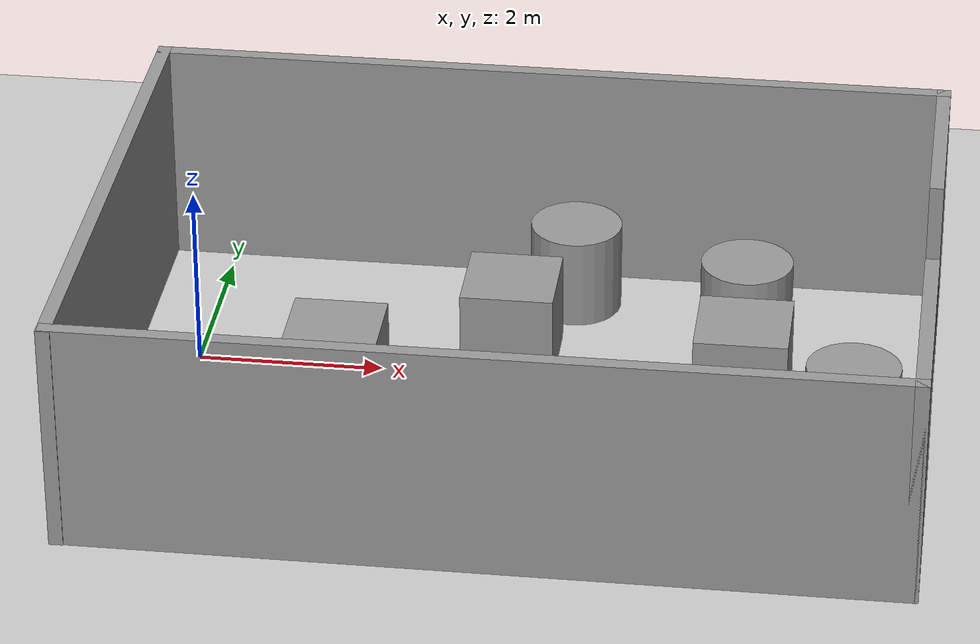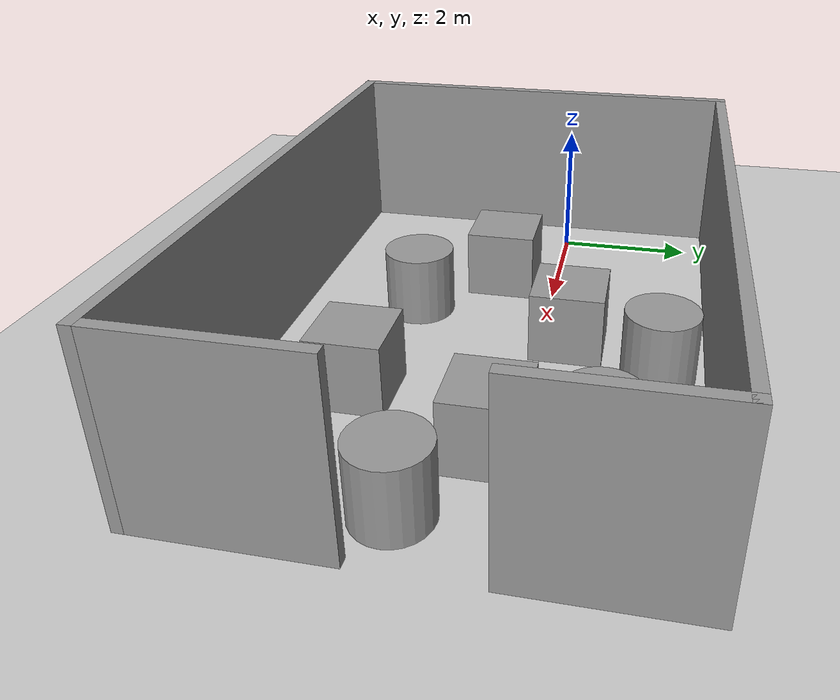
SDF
<sdf version="1.7">
 <world name="default">
  <physics type="ode">
   <max_step_size>0.001</max_step_size>
   <real_time_update_rate>1000</real_time_update_rate>
   <real_time_factor>1</real_time_factor>
   <type>world</type>
   <iters>500</iters>
  </physics>
  <light name="sun" type="directional">
   <pose>0 0 10 0 -0 0</pose>
   <diffuse>0.8 0.8 0.8 1</diffuse>
   <specular>0.2 0.2 0.2 1</specular>
   <attenuation>
    <range>1000</range>
    <constant>0.9</constant>
    <linear>0.01</linear>
    <quadratic>0.001</quadratic>
   </attenuation>
   <direction>-0.5 0.1 -0.9</direction>
   <spot><inner_angle>0</inner_angle><outer_angle>0</outer_angle><falloff>0</falloff></spot>
  </light>
  <model name="ground_plane">
   <static>1</static>
   <link name="link">
    <collision name="collision">
     <geometry><plane><normal>0 0 1</normal><size>100 100</size></plane></geometry>
     <surface><friction><ode><mu>100</mu><mu2>50</mu2></ode></friction></surface>
    </collision>
    <visual name="visual">
     <cast_shadows>0</cast_shadows>
     <geometry><plane><normal>0 0 1</normal><size>100 100</size></plane></geometry>
     <material>
      <script><uri>file://media/materials/scripts/gazebo.material</uri><name>Gazebo/Grey</name></script>
     </material>
    </visual>
   </link>
  </model>
  <gravity>0 0 -9.8</gravity>
  <magnetic_field>6e-06 2.3e-05 -4.2e-05</magnetic_field>
  <atmosphere type="adiabatic"/>
  <scene><ambient>0.4 0.4 0.4 1</ambient><background>0.7 0.7 0.7 1</background><shadows>1</shadows></scene>
  <spherical_coordinates>
   <surface_model>EARTH_WGS84</surface_model>
   <latitude_deg>0</latitude_deg>
   <longitude_deg>0</longitude_deg>
   <elevation>0</elevation>
   <heading_deg>0</heading_deg>
  </spherical_coordinates>
  <model name="unit_box">
   <pose>5.01399 -2.12701 0.499995 0 1e-05 0</pose>
   <link name="link">
    <inertial>
     <mass>1</mass>
     <inertia>
      <ixx>0.166667</ixx>
      <ixy>0</ixy>
      <ixz>0</ixz>
      <iyy>0.166667</iyy>
      <iyz>0</iyz>
      <izz>0.166667</izz>
     </inertia>
    </inertial>
    <collision name="collision"><geometry><box><size>1 1 1</size></box></geometry></collision>
    <visual name="visual">
     <geometry><box><size>1 1 1</size></box></geometry>
     <material>
      <script><name>Gazebo/Grey</name><uri>file://media/materials/scripts/gazebo.material</uri></script>
     </material>
    </visual>
   </link>
  </model>
  <model name="unit_cylinder">
   <pose>2.73245 -1.90578 0.499993 -3e-06 3e-06 0</pose>
   <link name="link">
    <inertial>
     <mass>1</mass>
     <inertia><ixx>0.145833</ixx><ixy>0</ixy><ixz>0</ixz><iyy>0.145833</iyy><iyz>0</iyz><izz>0.125</izz></inertia>
    </inertial>
    <collision name="collision">
     <geometry><cylinder><radius>0.5</radius><length>1</length></cylinder></geometry>
    </collision>
    <visual name="visual">
     <geometry><cylinder><radius>0.5</radius><length>1</length></cylinder></geometry>
     <material>
      <script><name>Gazebo/Grey</name><uri>file://media/materials/scripts/gazebo.material</uri></script>
     </material>
    </visual>
   </link>
  </model>
  <model name="unit_box_0">
   <pose>1.62461 -0.806505 0.5 0 -0 0</pose>
   <link name="link">
    <inertial>
     <mass>1</mass>
     <inertia>
      <ixx>0.166667</ixx>
      <ixy>0</ixy>
      <ixz>0</ixz>
      <iyy>0.166667</iyy>
      <iyz>0</iyz>
      <izz>0.166667</izz>
     </inertia>
    </inertial>
    <collision name="collision"><geometry><box><size>1 1 1</size></box></geometry></collision>
    <visual name="visual">
     <geometry><box><size>1 1 1</size></box></geometry>
     <material>
      <script><name>Gazebo/Grey</name><uri>file://media/materials/scripts/gazebo.material</uri></script>
     </material>
    </visual>
   </link>
  </model>
  <model name="unit_cylinder_0">
   <pose>3.92118 1.66789 0.499998 3e-06 -3e-06 0</pose>
   <link name="link">
    <inertial>
     <mass>1</mass>
     <inertia><ixx>0.145833</ixx><ixy>0</ixy><ixz>0</ixz><iyy>0.145833</iyy><iyz>0</iyz><izz>0.125</izz></inertia>
    </inertial>
    <collision name="collision">
     <geometry><cylinder><radius>0.5</radius><length>1</length></cylinder></geometry>
    </collision>
    <visual name="visual">
     <geometry><cylinder><radius>0.5</radius><length>1</length></cylinder></geometry>
     <material>
      <script><name>Gazebo/Grey</name><uri>file://media/materials/scripts/gazebo.material</uri></script>
     </material>
    </visual>
   </link>
  </model>
  <model name="unit_box_1">
   <pose>3.3576 0.411443 0.499995 0 -1e-05 0</pose>
   <link name="link">
    <inertial>
     <mass>1</mass>
     <inertia>
      <ixx>0.166667</ixx>
      <ixy>0</ixy>
      <ixz>0</ixz>
      <iyy>0.166667</iyy>
      <iyz>0</iyz>
      <izz>0.166667</izz>
     </inertia>
    </inertial>
    <collision name="collision"><geometry><box><size>1 1 1</size></box></geometry></collision>
    <visual name="visual">
     <geometry><box><size>1 1 1</size></box></geometry>
     <material>
      <script><name>Gazebo/Grey</name><uri>file://media/materials/scripts/gazebo.material</uri></script>
     </material>
    </visual>
   </link>
  </model>
  <model name="unit_cylinder_1">
   <pose>7.10689 -1.01578 0.5 0 -0 0</pose>
   <link name="link">
    <inertial>
     <mass>1</mass>
     <inertia><ixx>0.145833</ixx><ixy>0</ixy><ixz>0</ixz><iyy>0.145833</iyy><iyz>0</iyz><izz>0.125</izz></inertia>
    </inertial>
    <collision name="collision">
     <geometry><cylinder><radius>0.5</radius><length>1</length></cylinder></geometry>
    </collision>
    <visual name="visual">
     <geometry><cylinder><radius>0.5</radius><length>1</length></cylinder></geometry>
     <material>
      <script><name>Gazebo/Grey</name><uri>file://media/materials/scripts/gazebo.material</uri></script>
     </material>
    </visual>
   </link>
  </model>
  <model name="unit_cylinder_2">
   <pose>5.84645 1.05072 0.5 0 -0 0</pose>
   <link name="link">
    <inertial>
     <mass>1</mass>
     <inertia><ixx>0.145833</ixx><ixy>0</ixy><ixz>0</ixz><iyy>0.145833</iyy><iyz>0</iyz><izz>0.125</izz></inertia>
    </inertial>
    <collision name="collision">
     <geometry><cylinder><radius>0.5</radius><length>1</length></cylinder></geometry>
    </collision>
    <visual name="visual">
     <geometry><cylinder><radius>0.5</radius><length>1</length></cylinder></geometry>
     <material>
      <script><name>Gazebo/Grey</name><uri>file://media/materials/scripts/gazebo.material</uri></script>
     </material>
    </visual>
   </link>
  </model>
  <model name="unit_box_2">
   <pose>5.90554 -0.229541 0.499995 0 -1e-05 0</pose>
   <link name="link">
    <inertial>
     <mass>1</mass>
     <inertia>
      <ixx>0.166667</ixx>
      <ixy>0</ixy>
      <ixz>0</ixz>
      <iyy>0.166667</iyy>
      <iyz>0</iyz>
      <izz>0.166667</izz>
     </inertia>
    </inertial>
    <collision name="collision"><geometry><box><size>1 1 1</size></box></geometry></collision>
    <visual name="visual">
     <geometry><box><size>1 1 1</size></box></geometry>
     <material>
      <script><name>Gazebo/Grey</name><uri>file://media/materials/scripts/gazebo.material</uri></script>
     </material>
    </visual>
   </link>
  </model>
  <model name="room">
   <pose>3.54684 -0.68342 0 0 -0 0</pose>
   <link name="Wall_0">
    <collision name="Wall_0_Collision">
     <geometry><box><size>8.75 0.15 2.5</size></box></geometry>
     <pose>0 0 1.25 0 -0 0</pose>
    </collision>
    <visual name="Wall_0_Visual">
     <pose>0 0 1.25 0 -0 0</pose>
     <geometry><box><size>8.75 0.15 2.5</size></box></geometry>
     <material>
      <script><uri>file://media/materials/scripts/gazebo.material</uri><name>Gazebo/Grey</name></script>
      <ambient>1 1 1 1</ambient>
     </material>
     <meta><layer>0</layer></meta>
    </visual>
    <pose>0.005 -3.04 0 0 -0 0</pose>
   </link>
   <link name="Wall_11">
    <collision name="Wall_11_Collision">
     <geometry><box><size>2.5 0.15 2.5</size></box></geometry>
     <pose>0 0 1.25 0 -0 0</pose>
    </collision>
    <visual name="Wall_11_Visual">
     <pose>0 0 1.25 0 -0 0</pose>
     <geometry><box><size>2.5 0.15 2.5</size></box></geometry>
     <material>
      <script><uri>file://media/materials/scripts/gazebo.material</uri><name>Gazebo/Grey</name></script>
      <ambient>1 1 1 1</ambient>
     </material>
     <meta><layer>0</layer></meta>
    </visual>
    <pose>4.305 -1.865 0 0 -0 -1.5708</pose>
   </link>
   <link name="Wall_3">
    <collision name="Wall_3_Collision">
     <geometry><box><size>6.25 0.15 2.5</size></box></geometry>
     <pose>0 0 1.25 0 -0 0</pose>
    </collision>
    <visual name="Wall_3_Visual">
     <pose>0 0 1.25 0 -0 0</pose>
     <geometry><box><size>6.25 0.15 2.5</size></box></geometry>
     <material>
      <script><uri>file://media/materials/scripts/gazebo.material</uri><name>Gazebo/Grey</name></script>
      <ambient>1 1 1 1</ambient>
     </material>
     <meta><layer>0</layer></meta>
    </visual>
    <pose>-4.305 -0 0 0 -0 1.5708</pose>
   </link>
   <link name="Wall_6">
    <collision name="Wall_6_Collision">
     <geometry><box><size>8.75 0.15 2.5</size></box></geometry>
     <pose>0 0 1.25 0 -0 0</pose>
    </collision>
    <visual name="Wall_6_Visual">
     <pose>0 0 1.25 0 -0 0</pose>
     <geometry><box><size>8.75 0.15 2.5</size></box></geometry>
     <material>
      <script><uri>file://media/materials/scripts/gazebo.material</uri><name>Gazebo/Grey</name></script>
      <ambient>1 1 1 1</ambient>
     </material>
     <meta><layer>0</layer></meta>
    </visual>
    <pose>-0.005 3.05 0 0 -0 0</pose>
   </link>
   <link name="Wall_7">
    <collision name="Wall_7_Collision">
     <geometry><box><size>2.25 0.15 2.5</size></box></geometry>
     <pose>0 0 1.25 0 -0 0</pose>
    </collision>
    <visual name="Wall_7_Visual">
     <pose>0 0 1.25 0 -0 0</pose>
     <geometry><box><size>2.25 0.15 2.5</size></box></geometry>
     <material>
      <script><uri>file://media/materials/scripts/gazebo.material</uri><name>Gazebo/Grey</name></script>
      <ambient>1 1 1 1</ambient>
     </material>
     <meta><layer>0</layer></meta>
    </visual>
    <pose>4.295 2 0 0 -0 -1.5708</pose>
   </link>
   <static>1</static>
  </model>
 </world>
</sdf>
